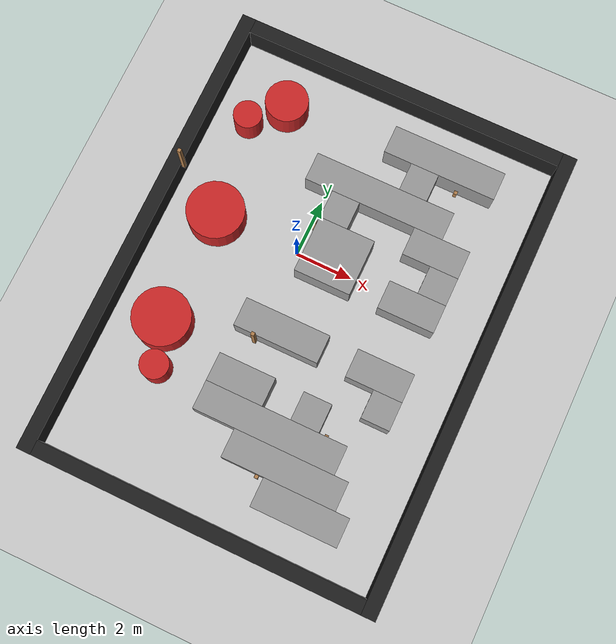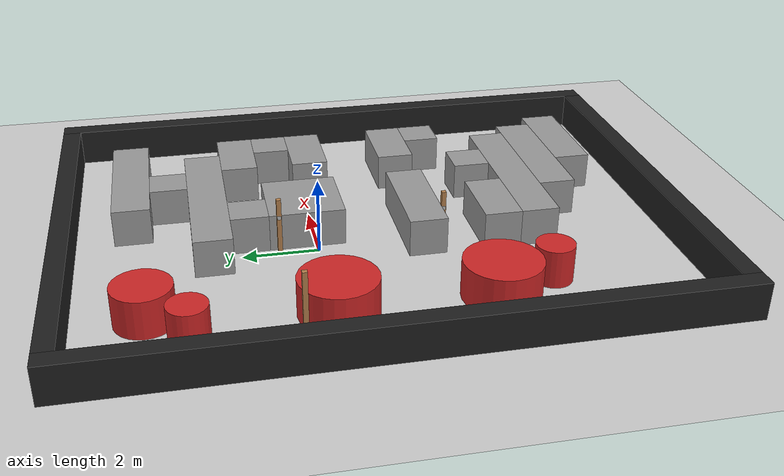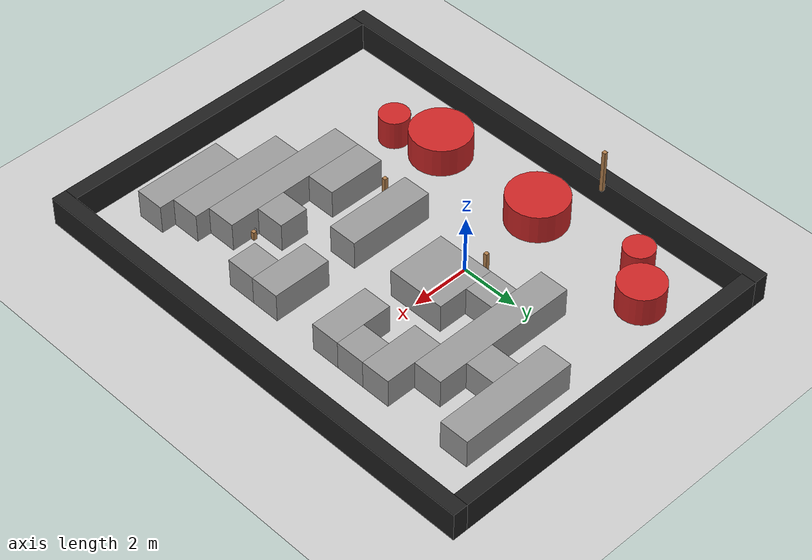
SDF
<sdf version="1.7">
 <world name="default">
  <light name="sun" type="directional">
   <pose>0 0 10 0 -0 0</pose>
   <diffuse>0.8 0.8 0.8 1</diffuse>
   <specular>0.2 0.2 0.2 1</specular>
   <attenuation>
    <range>1000</range>
    <constant>0.9</constant>
    <linear>0.01</linear>
    <quadratic>0.001</quadratic>
   </attenuation>
   <direction>-0.5 0.1 -0.9</direction>
   <spot><inner_angle>0</inner_angle><outer_angle>0</outer_angle><falloff>0</falloff></spot>
  </light>
  <model name="ground_plane">
   <static>1</static>
   <link name="link">
    <collision name="collision">
     <geometry><plane><normal>0 0 1</normal><size>100 100</size></plane></geometry>
     <surface><friction><ode><mu>100</mu><mu2>50</mu2></ode></friction></surface>
    </collision>
    <visual name="visual">
     <cast_shadows>0</cast_shadows>
     <geometry><plane><normal>0 0 1</normal><size>100 100</size></plane></geometry>
     <material>
      <script><uri>file://media/materials/scripts/gazebo.material</uri><name>Gazebo/Grey</name></script>
     </material>
    </visual>
   </link>
  </model>
  <gravity>0 0 -9.8</gravity>
  <magnetic_field>6e-06 2.3e-05 -4.2e-05</magnetic_field>
  <atmosphere type="adiabatic"/>
  <physics type="ode">
   <max_step_size>0.001</max_step_size>
   <real_time_factor>1</real_time_factor>
   <real_time_update_rate>1000</real_time_update_rate>
  </physics>
  <scene><ambient>0.4 0.4 0.4 1</ambient><background>0.7 0.7 0.7 1</background><shadows>1</shadows></scene>
  <audio><device>default</device></audio>
  <spherical_coordinates>
   <surface_model>EARTH_WGS84</surface_model>
   <latitude_deg>0</latitude_deg>
   <longitude_deg>0</longitude_deg>
   <elevation>0</elevation>
   <heading_deg>0</heading_deg>
  </spherical_coordinates>
  <model name="north_wall">
   <static>1</static>
   <pose>7 -1.5 0.5 0 0 0</pose>
   <link name="link">
    <inertial>
     <mass>1</mass>
     <inertia>
      <ixx>0.166667</ixx>
      <ixy>0</ixy>
      <ixz>0</ixz>
      <iyy>0.166667</iyy>
      <iyz>0</iyz>
      <izz>0.166667</izz>
     </inertia>
    </inertial>
    <collision name="collision"><geometry><box><size>0.5 16.5 1</size></box></geometry></collision>
    <visual name="visual">
     <geometry><box><size>0.5 16.5 1</size></box></geometry>
     <material>
      <script><name>Gazebo/Black</name><uri>file://media/materials/scripts/gazebo.material</uri></script>
     </material>
    </visual>
   </link>
  </model>
  <model name="south_wall">
   <static>1</static>
   <pose>-5 -1.5 0.5 0 0 0</pose>
   <link name="link">
    <inertial>
     <mass>1</mass>
     <inertia>
      <ixx>0.166667</ixx>
      <ixy>0</ixy>
      <ixz>0</ixz>
      <iyy>0.166667</iyy>
      <iyz>0</iyz>
      <izz>0.166667</izz>
     </inertia>
    </inertial>
    <collision name="collision"><geometry><box><size>0.5 16.5 1</size></box></geometry></collision>
    <visual name="visual">
     <geometry><box><size>0.5 16.5 1</size></box></geometry>
     <material>
      <script><name>Gazebo/Black</name><uri>file://media/materials/scripts/gazebo.material</uri></script>
     </material>
    </visual>
   </link>
  </model>
  <model name="east_wall">
   <static>1</static>
   <pose>1 -9.5 0.5 0 0 0</pose>
   <link name="link">
    <inertial>
     <mass>1</mass>
     <inertia>
      <ixx>0.166667</ixx>
      <ixy>0</ixy>
      <ixz>0</ixz>
      <iyy>0.166667</iyy>
      <iyz>0</iyz>
      <izz>0.166667</izz>
     </inertia>
    </inertial>
    <collision name="collision"><geometry><box><size>11.5 0.5 1</size></box></geometry></collision>
    <visual name="visual">
     <geometry><box><size>11.5 0.5 1</size></box></geometry>
     <material>
      <script><name>Gazebo/Black</name><uri>file://media/materials/scripts/gazebo.material</uri></script>
     </material>
    </visual>
   </link>
  </model>
  <model name="west_wall">
   <static>1</static>
   <pose>1 6.5 0.5 0 -0 0</pose>
   <link name="link">
    <inertial>
     <mass>1</mass>
     <inertia>
      <ixx>0.166667</ixx>
      <ixy>0</ixy>
      <ixz>0</ixz>
      <iyy>0.166667</iyy>
      <iyz>0</iyz>
      <izz>0.166667</izz>
     </inertia>
    </inertial>
    <collision name="collision"><geometry><box><size>11.5 0.5 1</size></box></geometry></collision>
    <visual name="visual">
     <geometry><box><size>11.5 0.5 1</size></box></geometry>
     <material>
      <script><name>Gazebo/Black</name><uri>file://media/materials/scripts/gazebo.material</uri></script>
     </material>
    </visual>
   </link>
  </model>
  <model name="b1">
   <static>1</static>
   <pose>3.25 4.75 0.5 0 0 0</pose>
   <link name="link">
    <inertial>
     <mass>1</mass>
     <inertia>
      <ixx>0.166667</ixx>
      <ixy>0</ixy>
      <ixz>0</ixz>
      <iyy>0.166667</iyy>
      <iyz>0</iyz>
      <izz>0.166667</izz>
     </inertia>
    </inertial>
    <collision name="collision"><geometry><box><size>4 1 1</size></box></geometry></collision>
    <visual name="visual">
     <geometry><box><size>4 1 1</size></box></geometry>
     <material>
      <script><name>Gazebo/Grey</name><uri>file://media/materials/scripts/gazebo.material</uri></script>
     </material>
    </visual>
   </link>
  </model>
  <model name="b2">
   <static>1</static>
   <pose>2.75 3.75 0.5 0 0 0</pose>
   <link name="link">
    <inertial>
     <mass>1</mass>
     <inertia>
      <ixx>0.166667</ixx>
      <ixy>0</ixy>
      <ixz>0</ixz>
      <iyy>0.166667</iyy>
      <iyz>0</iyz>
      <izz>0.166667</izz>
     </inertia>
    </inertial>
    <collision name="collision"><geometry><box><size>1 1 1</size></box></geometry></collision>
    <visual name="visual">
     <geometry><box><size>1 1 1</size></box></geometry>
     <material>
      <script><name>Gazebo/Grey</name><uri>file://media/materials/scripts/gazebo.material</uri></script>
     </material>
    </visual>
   </link>
  </model>
  <model name="b3">
   <static>1</static>
   <pose>1.75 2.75 0.5 0 0 0</pose>
   <link name="link">
    <inertial>
     <mass>1</mass>
     <inertia>
      <ixx>0.166667</ixx>
      <ixy>0</ixy>
      <ixz>0</ixz>
      <iyy>0.166667</iyy>
      <iyz>0</iyz>
      <izz>0.166667</izz>
     </inertia>
    </inertial>
    <collision name="collision"><geometry><box><size>5 1 1</size></box></geometry></collision>
    <visual name="visual">
     <geometry><box><size>5 1 1</size></box></geometry>
     <material>
      <script><name>Gazebo/Grey</name><uri>file://media/materials/scripts/gazebo.material</uri></script>
     </material>
    </visual>
   </link>
  </model>
  <model name="b4">
   <static>1</static>
   <pose>4.25 1.75 0.5 0 0 0</pose>
   <link name="link">
    <inertial>
     <mass>1</mass>
     <inertia>
      <ixx>0.166667</ixx>
      <ixy>0</ixy>
      <ixz>0</ixz>
      <iyy>0.166667</iyy>
      <iyz>0</iyz>
      <izz>0.166667</izz>
     </inertia>
    </inertial>
    <collision name="collision"><geometry><box><size>2 1 1</size></box></geometry></collision>
    <visual name="visual">
     <geometry><box><size>2 1 1</size></box></geometry>
     <material>
      <script><name>Gazebo/Grey</name><uri>file://media/materials/scripts/gazebo.material</uri></script>
     </material>
    </visual>
   </link>
  </model>
  <model name="b5">
   <static>1</static>
   <pose>4.75 0.75 0.5 0 0 0</pose>
   <link name="link">
    <inertial>
     <mass>1</mass>
     <inertia>
      <ixx>0.166667</ixx>
      <ixy>0</ixy>
      <ixz>0</ixz>
      <iyy>0.166667</iyy>
      <iyz>0</iyz>
      <izz>0.166667</izz>
     </inertia>
    </inertial>
    <collision name="collision"><geometry><box><size>1 1 1</size></box></geometry></collision>
    <visual name="visual">
     <geometry><box><size>1 1 1</size></box></geometry>
     <material>
      <script><name>Gazebo/Grey</name><uri>file://media/materials/scripts/gazebo.material</uri></script>
     </material>
    </visual>
   </link>
  </model>
  <model name="b6">
   <static>1</static>
   <pose>4.25 -0.25 0.5 0 0 0</pose>
   <link name="link">
    <inertial>
     <mass>1</mass>
     <inertia>
      <ixx>0.166667</ixx>
      <ixy>0</ixy>
      <ixz>0</ixz>
      <iyy>0.166667</iyy>
      <iyz>0</iyz>
      <izz>0.166667</izz>
     </inertia>
    </inertial>
    <collision name="collision"><geometry><box><size>2 1 1</size></box></geometry></collision>
    <visual name="visual">
     <geometry><box><size>2 1 1</size></box></geometry>
     <material>
      <script><name>Gazebo/Grey</name><uri>file://media/materials/scripts/gazebo.material</uri></script>
     </material>
    </visual>
   </link>
  </model>
  <model name="b7">
   <static>1</static>
   <pose>0.75 1.75 0.5 0 0 0</pose>
   <link name="link">
    <inertial>
     <mass>1</mass>
     <inertia>
      <ixx>0.166667</ixx>
      <ixy>0</ixy>
      <ixz>0</ixz>
      <iyy>0.166667</iyy>
      <iyz>0</iyz>
      <izz>0.166667</izz>
     </inertia>
    </inertial>
    <collision name="collision"><geometry><box><size>1 1 1</size></box></geometry></collision>
    <visual name="visual">
     <geometry><box><size>1 1 1</size></box></geometry>
     <material>
      <script><name>Gazebo/Grey</name><uri>file://media/materials/scripts/gazebo.material</uri></script>
     </material>
    </visual>
   </link>
  </model>
  <model name="b8">
   <static>1</static>
   <pose>1.25 0.25 0.5 0 0 0</pose>
   <link name="link">
    <inertial>
     <mass>1</mass>
     <inertia>
      <ixx>0.166667</ixx>
      <ixy>0</ixy>
      <ixz>0</ixz>
      <iyy>0.166667</iyy>
      <iyz>0</iyz>
      <izz>0.166667</izz>
     </inertia>
    </inertial>
    <collision name="collision"><geometry><box><size>2 2 1</size></box></geometry></collision>
    <visual name="visual">
     <geometry><box><size>2 2 1</size></box></geometry>
     <material>
      <script><name>Gazebo/Grey</name><uri>file://media/materials/scripts/gazebo.material</uri></script>
     </material>
    </visual>
   </link>
  </model>
  <model name="b9">
   <static>1</static>
   <pose>4.25 -2.75 0.5 0 0 0</pose>
   <link name="link">
    <inertial>
     <mass>1</mass>
     <inertia>
      <ixx>0.166667</ixx>
      <ixy>0</ixy>
      <ixz>0</ixz>
      <iyy>0.166667</iyy>
      <iyz>0</iyz>
      <izz>0.166667</izz>
     </inertia>
    </inertial>
    <collision name="collision"><geometry><box><size>2 1 1</size></box></geometry></collision>
    <visual name="visual">
     <geometry><box><size>2 1 1</size></box></geometry>
     <material>
      <script><name>Gazebo/Grey</name><uri>file://media/materials/scripts/gazebo.material</uri></script>
     </material>
    </visual>
   </link>
  </model>
  <model name="b10">
   <static>1</static>
   <pose>4.75 -3.75 0.5 0 0 0</pose>
   <link name="link">
    <inertial>
     <mass>1</mass>
     <inertia>
      <ixx>0.166667</ixx>
      <ixy>0</ixy>
      <ixz>0</ixz>
      <iyy>0.166667</iyy>
      <iyz>0</iyz>
      <izz>0.166667</izz>
     </inertia>
    </inertial>
    <collision name="collision"><geometry><box><size>1 1 1</size></box></geometry></collision>
    <visual name="visual">
     <geometry><box><size>1 1 1</size></box></geometry>
     <material>
      <script><name>Gazebo/Grey</name><uri>file://media/materials/scripts/gazebo.material</uri></script>
     </material>
    </visual>
   </link>
  </model>
  <model name="b11">
   <static>1</static>
   <pose>0.75 -2.75 0.5 0 0 0</pose>
   <link name="link">
    <inertial>
     <mass>1</mass>
     <inertia>
      <ixx>0.166667</ixx>
      <ixy>0</ixy>
      <ixz>0</ixz>
      <iyy>0.166667</iyy>
      <iyz>0</iyz>
      <izz>0.166667</izz>
     </inertia>
    </inertial>
    <collision name="collision"><geometry><box><size>3 1 1</size></box></geometry></collision>
    <visual name="visual">
     <geometry><box><size>3 1 1</size></box></geometry>
     <material>
      <script><name>Gazebo/Grey</name><uri>file://media/materials/scripts/gazebo.material</uri></script>
     </material>
    </visual>
   </link>
  </model>
  <model name="b12">
   <static>1</static>
   <pose>2.75 -4.75 0.5 0 0 0</pose>
   <link name="link">
    <inertial>
     <mass>1</mass>
     <inertia>
      <ixx>0.166667</ixx>
      <ixy>0</ixy>
      <ixz>0</ixz>
      <iyy>0.166667</iyy>
      <iyz>0</iyz>
      <izz>0.166667</izz>
     </inertia>
    </inertial>
    <collision name="collision"><geometry><box><size>1 1 1</size></box></geometry></collision>
    <visual name="visual">
     <geometry><box><size>1 1 1</size></box></geometry>
     <material>
      <script><name>Gazebo/Grey</name><uri>file://media/materials/scripts/gazebo.material</uri></script>
     </material>
    </visual>
   </link>
  </model>
  <model name="b13">
   <static>1</static>
   <pose>0.25 -4.75 0.5 0 0 0</pose>
   <link name="link">
    <inertial>
     <mass>1</mass>
     <inertia>
      <ixx>0.166667</ixx>
      <ixy>0</ixy>
      <ixz>0</ixz>
      <iyy>0.166667</iyy>
      <iyz>0</iyz>
      <izz>0.166667</izz>
     </inertia>
    </inertial>
    <collision name="collision"><geometry><box><size>2 1 1</size></box></geometry></collision>
    <visual name="visual">
     <geometry><box><size>2 1 1</size></box></geometry>
     <material>
      <script><name>Gazebo/Grey</name><uri>file://media/materials/scripts/gazebo.material</uri></script>
     </material>
    </visual>
   </link>
  </model>
  <model name="b14">
   <static>1</static>
   <pose>1.75 -5.75 0.5 0 0 0</pose>
   <link name="link">
    <inertial>
     <mass>1</mass>
     <inertia>
      <ixx>0.166667</ixx>
      <ixy>0</ixy>
      <ixz>0</ixz>
      <iyy>0.166667</iyy>
      <iyz>0</iyz>
      <izz>0.166667</izz>
     </inertia>
    </inertial>
    <collision name="collision"><geometry><box><size>5 1 1</size></box></geometry></collision>
    <visual name="visual">
     <geometry><box><size>5 1 1</size></box></geometry>
     <material>
      <script><name>Gazebo/Grey</name><uri>file://media/materials/scripts/gazebo.material</uri></script>
     </material>
    </visual>
   </link>
  </model>
  <model name="b15">
   <static>1</static>
   <pose>2.75 -6.75 0.5 0 0 0</pose>
   <link name="link">
    <inertial>
     <mass>1</mass>
     <inertia>
      <ixx>0.166667</ixx>
      <ixy>0</ixy>
      <ixz>0</ixz>
      <iyy>0.166667</iyy>
      <iyz>0</iyz>
      <izz>0.166667</izz>
     </inertia>
    </inertial>
    <collision name="collision"><geometry><box><size>4 1 1</size></box></geometry></collision>
    <visual name="visual">
     <geometry><box><size>4 1 1</size></box></geometry>
     <material>
      <script><name>Gazebo/Grey</name><uri>file://media/materials/scripts/gazebo.material</uri></script>
     </material>
    </visual>
   </link>
  </model>
  <model name="b16">
   <static>1</static>
   <pose>3.75 -7.75 0.5 0 0 0</pose>
   <link name="link">
    <inertial>
     <mass>1</mass>
     <inertia>
      <ixx>0.166667</ixx>
      <ixy>0</ixy>
      <ixz>0</ixz>
      <iyy>0.166667</iyy>
      <iyz>0</iyz>
      <izz>0.166667</izz>
     </inertia>
    </inertial>
    <collision name="collision"><geometry><box><size>3 1 1</size></box></geometry></collision>
    <visual name="visual">
     <geometry><box><size>3 1 1</size></box></geometry>
     <material>
      <script><name>Gazebo/Grey</name><uri>file://media/materials/scripts/gazebo.material</uri></script>
     </material>
    </visual>
   </link>
  </model>
  <model name="c1">
   <pose>-2.5 4.5 0.5 0 0 0</pose>
   <link name="link">
    <inertial>
     <mass>1</mass>
     <inertia><ixx>0.145833</ixx><ixy>0</ixy><ixz>0</ixz><iyy>0.145833</iyy><iyz>0</iyz><izz>0.125</izz></inertia>
    </inertial>
    <collision name="collision">
     <geometry><cylinder><radius>0.75</radius><length>1</length></cylinder></geometry>
    </collision>
    <visual name="visual">
     <geometry><cylinder><radius>0.75</radius><length>1</length></cylinder></geometry>
     <material>
      <script><name>Gazebo/Red</name><uri>file://media/materials/scripts/gazebo.material</uri></script>
     </material>
    </visual>
   </link>
  </model>
  <model name="c2">
   <pose>-3.5 3.5 0.5 0 0 0</pose>
   <link name="link">
    <inertial>
     <mass>1</mass>
     <inertia><ixx>0.145833</ixx><ixy>0</ixy><ixz>0</ixz><iyy>0.145833</iyy><iyz>0</iyz><izz>0.125</izz></inertia>
    </inertial>
    <collision name="collision">
     <geometry><cylinder><radius>0.5</radius><length>1</length></cylinder></geometry>
    </collision>
    <visual name="visual">
     <geometry><cylinder><radius>0.5</radius><length>1</length></cylinder></geometry>
     <material>
      <script><name>Gazebo/Red</name><uri>file://media/materials/scripts/gazebo.material</uri></script>
     </material>
    </visual>
   </link>
  </model>
  <model name="c3">
   <pose>-3 0 0.5 0 0 0</pose>
   <link name="link">
    <inertial>
     <mass>1</mass>
     <inertia><ixx>0.145833</ixx><ixy>0</ixy><ixz>0</ixz><iyy>0.145833</iyy><iyz>0</iyz><izz>0.125</izz></inertia>
    </inertial>
    <collision name="collision">
     <geometry><cylinder><radius>1</radius><length>1</length></cylinder></geometry>
    </collision>
    <visual name="visual">
     <geometry><cylinder><radius>1</radius><length>1</length></cylinder></geometry>
     <material>
      <script><name>Gazebo/Red</name><uri>file://media/materials/scripts/gazebo.material</uri></script>
     </material>
    </visual>
   </link>
  </model>
  <model name="c4">
   <pose>-2.5 -5.5 0.5 0 0 0</pose>
   <link name="link">
    <inertial>
     <mass>1</mass>
     <inertia><ixx>0.145833</ixx><ixy>0</ixy><ixz>0</ixz><iyy>0.145833</iyy><iyz>0</iyz><izz>0.125</izz></inertia>
    </inertial>
    <collision name="collision">
     <geometry><cylinder><radius>0.5</radius><length>1</length></cylinder></geometry>
    </collision>
    <visual name="visual">
     <geometry><cylinder><radius>0.5</radius><length>1</length></cylinder></geometry>
     <material>
      <script><name>Gazebo/Red</name><uri>file://media/materials/scripts/gazebo.material</uri></script>
     </material>
    </visual>
   </link>
  </model>
  <model name="c5">
   <pose>-3 -4 0.5 0 0 0</pose>
   <link name="link">
    <inertial>
     <mass>1</mass>
     <inertia><ixx>0.145833</ixx><ixy>0</ixy><ixz>0</ixz><iyy>0.145833</iyy><iyz>0</iyz><izz>0.125</izz></inertia>
    </inertial>
    <collision name="collision">
     <geometry><cylinder><radius>1</radius><length>1</length></cylinder></geometry>
    </collision>
    <visual name="visual">
     <geometry><cylinder><radius>1</radius><length>1</length></cylinder></geometry>
     <material>
      <script><name>Gazebo/Red</name><uri>file://media/materials/scripts/gazebo.material</uri></script>
     </material>
    </visual>
   </link>
  </model>
  <model name="aruco_column_6x6_100mm_42">
   <static>1</static>
   <link name="link">
    <inertial>
     <mass>1</mass>
     <inertia><ixx>1</ixx><ixy>0</ixy><ixz>0</ixz><iyy>1</iyy><iyz>0</iyz><izz>1</izz></inertia>
    </inertial>
    <collision name="collision"><geometry><box><size>0.12 0.12 0.3</size></box></geometry></collision>
    <visual name="visual">
     <geometry><box><size>0.12 0.12 0.3</size></box></geometry>
     <material>
      <script><uri>file://media/materials/scripts/gazebo.material</uri><name>Gazebo/Wood</name></script>
     </material>
    </visual>
   </link>
   <link name="aruco_6x6_100mm_42::main">
    <pose relative_to="aruco_6x6_100mm_42::__model__">0 0 0 0 -0 0</pose>
    <visual name="main_Visual">
     <geometry><box><size>0.1 0.1 0.001</size></box></geometry>
     <material>
      <script>
       <uri>file://media/materials/scripts</uri>
       <uri>file://media/materials/textures</uri>
       <name>aruco_6x6_100mm_42</name>
      </script>
     </material>
    </visual>
    <inertial>
     <inertia><ixx>1</ixx><ixy>0</ixy><ixz>0</ixz><iyy>1</iyy><iyz>0</iyz><izz>1</izz></inertia>
     <mass>1</mass>
    </inertial>
   </link>
   <frame name="aruco_6x6_100mm_42::__model__" attached_to="aruco_6x6_100mm_42::main">
    <pose relative_to="__model__">-0.06 0 0.24 3.14159 1.57079 3.14159</pose>
   </frame>
   <joint name="aruco_6x6_100mm_42_joint" type="fixed">
    <child>aruco_6x6_100mm_42::main</child>
    <parent>link</parent>
   </joint>
   <pose>4 4.19 0.15 0 0 0</pose>
  </model>
  <model name="aruco_column_6x6_100mm_2">
   <static>1</static>
   <link name="link">
    <pose>0 0 0.75 0 0 0</pose>
    <inertial>
     <mass>1</mass>
     <inertia><ixx>1</ixx><ixy>0</ixy><ixz>0</ixz><iyy>1</iyy><iyz>0</iyz><izz>1</izz></inertia>
    </inertial>
    <collision name="collision">
     <geometry><box><size>0.12 0.12 1.5</size></box></geometry>
     <surface>
      <contact>
       <poissons_ratio>0.347</poissons_ratio>
       <elastic_modulus>8.8e+09</elastic_modulus>
       <ode><kp>100000</kp><kd>1</kd><max_vel>1</max_vel><min_depth>0.001</min_depth></ode>
      </contact>
      <friction>
       <torsional>
        <coefficient>1</coefficient>
        <use_patch_radius>0</use_patch_radius>
        <surface_radius>0.05</surface_radius>
       </torsional>
      </friction>
     </surface>
    </collision>
    <visual name="visual">
     <geometry><box><size>0.12 0.12 1.5</size></box></geometry>
     <material>
      <script><uri>file://media/materials/scripts/gazebo.material</uri><name>Gazebo/Wood</name></script>
     </material>
    </visual>
   </link>
   <link name="aruco_6x6_100mm_2::main">
    <pose relative_to="aruco_6x6_100mm_2::__model__">0 0 0 0 -0 0</pose>
    <visual name="main_Visual">
     <geometry><box><size>0.1 0.1 0.001</size></box></geometry>
     <material>
      <script>
       <uri>file://media/materials/scripts</uri>
       <uri>file://media/materials/textures</uri>
       <name>aruco_6x6_100mm_2</name>
      </script>
     </material>
    </visual>
    <inertial>
     <inertia><ixx>1</ixx><ixy>0</ixy><ixz>0</ixz><iyy>1</iyy><iyz>0</iyz><izz>1</izz></inertia>
     <mass>1</mass>
    </inertial>
   </link>
   <frame name="aruco_6x6_100mm_2::__model__" attached_to="aruco_6x6_100mm_2::main">
    <pose relative_to="__model__">-0.06 0 0.14 3.14159 1.57079 3.14159</pose>
   </frame>
   <joint name="aruco_6x6_100mm_2_joint" type="fixed">
    <child>aruco_6x6_100mm_2::main</child>
    <parent>link</parent>
   </joint>
   <pose>-4.68 1 0.75 0 0 0</pose>
  </model>
  <model name="aruco_column_6x6_100mm_0">
   <static>1</static>
   <link name="link">
    <inertial>
     <mass>1</mass>
     <inertia><ixx>1</ixx><ixy>0</ixy><ixz>0</ixz><iyy>1</iyy><iyz>0</iyz><izz>1</izz></inertia>
    </inertial>
    <collision name="collision">
     <geometry><box><size>0.12 0.12 0.3</size></box></geometry>
     <surface>
      <contact>
       <poissons_ratio>0.347</poissons_ratio>
       <elastic_modulus>8.8e+09</elastic_modulus>
       <ode><kp>100000</kp><kd>1</kd><max_vel>1</max_vel><min_depth>0.001</min_depth></ode>
      </contact>
      <friction>
       <torsional>
        <coefficient>1</coefficient>
        <use_patch_radius>0</use_patch_radius>
        <surface_radius>0.05</surface_radius>
       </torsional>
      </friction>
     </surface>
    </collision>
    <visual name="visual">
     <geometry><box><size>0.12 0.12 0.3</size></box></geometry>
     <material>
      <script><uri>file://media/materials/scripts/gazebo.material</uri><name>Gazebo/Wood</name></script>
     </material>
    </visual>
   </link>
   <link name="aruco_6x6_100mm_0::main">
    <pose relative_to="aruco_6x6_100mm_0::__model__">0 0 0 0 0 0</pose>
    <visual name="main_Visual">
     <geometry><box><size>0.1 0.1 0.001</size></box></geometry>
     <material>
      <script>
       <uri>file://media/materials/scripts</uri>
       <uri>file://media/materials/textures</uri>
       <name>aruco_6x6_100mm_0</name>
      </script>
     </material>
    </visual>
    <inertial>
     <inertia><ixx>1</ixx><ixy>0</ixy><ixz>0</ixz><iyy>1</iyy><iyz>0</iyz><izz>1</izz></inertia>
     <mass>1</mass>
    </inertial>
   </link>
   <frame name="aruco_6x6_100mm_0::__model__" attached_to="aruco_6x6_100mm_0::main">
    <pose relative_to="__model__">-0.06 0 0.19 3.14159 1.57079 3.14159</pose>
   </frame>
   <joint name="aruco_6x6_100mm_0_joint" type="fixed">
    <child>aruco_6x6_100mm_0::main</child>
    <parent>link</parent>
   </joint>
   <pose>3.5 -5.19 0.15 0 0 0</pose>
  </model>
  <model name="aruco_column_6x6_100mm_51">
   <static>1</static>
   <link name="link">
    <inertial>
     <mass>1</mass>
     <inertia><ixx>1</ixx><ixy>0</ixy><ixz>0</ixz><iyy>1</iyy><iyz>0</iyz><izz>1</izz></inertia>
    </inertial>
    <collision name="collision"><geometry><box><size>0.12 0.12 1.5</size></box></geometry></collision>
    <visual name="visual">
     <geometry><box><size>0.12 0.12 1.5</size></box></geometry>
     <material>
      <script><uri>file://media/materials/scripts/gazebo.material</uri><name>Gazebo/Wood</name></script>
     </material>
    </visual>
   </link>
   <link name="aruco_6x6_100mm_51::main">
    <pose relative_to="aruco_6x6_100mm_51::__model__">0 0 0 0 -0 0</pose>
    <visual name="main_Visual">
     <geometry><box><size>0.1 0.1 0.001</size></box></geometry>
     <material>
      <script>
       <uri>file://media/materials/scripts</uri>
       <uri>file://media/materials/textures</uri>
       <name>aruco_6x6_100mm_51</name>
      </script>
     </material>
    </visual>
    <inertial>
     <inertia><ixx>1</ixx><ixy>0</ixy><ixz>0</ixz><iyy>1</iyy><iyz>0</iyz><izz>1</izz></inertia>
     <mass>1</mass>
    </inertial>
   </link>
   <frame name="aruco_6x6_100mm_51::__model__" attached_to="aruco_6x6_100mm_51::main">
    <pose relative_to="__model__">-0.06 0 0.24 3.14159 1.57079 3.14159</pose>
   </frame>
   <joint name="aruco_6x6_100mm_51_joint" type="fixed">
    <child>aruco_6x6_100mm_51::main</child>
    <parent>link</parent>
   </joint>
   <pose>0.19 1 0.75 0 0 0</pose>
  </model>
  <model name="aruco_column_6x6_100mm_59">
   <static>1</static>
   <link name="link">
    <inertial>
     <mass>1</mass>
     <inertia><ixx>1</ixx><ixy>0</ixy><ixz>0</ixz><iyy>1</iyy><iyz>0</iyz><izz>1</izz></inertia>
    </inertial>
    <collision name="collision"><geometry><box><size>0.12 0.12 1.4</size></box></geometry></collision>
    <visual name="visual">
     <geometry><box><size>0.12 0.12 1.4</size></box></geometry>
     <material>
      <script><uri>file://media/materials/scripts/gazebo.material</uri><name>Gazebo/Wood</name></script>
     </material>
    </visual>
   </link>
   <link name="aruco_6x6_100mm_59::main">
    <pose relative_to="aruco_6x6_100mm_59::__model__">0 0 0 0 -0 0</pose>
    <visual name="main_Visual">
     <geometry><box><size>0.1 0.1 0.001</size></box></geometry>
     <material>
      <script>
       <uri>file://media/materials/scripts</uri>
       <uri>file://media/materials/textures</uri>
       <name>aruco_6x6_100mm_59</name>
      </script>
     </material>
    </visual>
    <inertial>
     <inertia><ixx>1</ixx><ixy>0</ixy><ixz>0</ixz><iyy>1</iyy><iyz>0</iyz><izz>1</izz></inertia>
     <mass>1</mass>
    </inertial>
   </link>
   <frame name="aruco_6x6_100mm_59::__model__" attached_to="aruco_6x6_100mm_59::main">
    <pose relative_to="__model__">-0.06 0 0.24 3.14159 1.57079 3.14159</pose>
   </frame>
   <joint name="aruco_6x6_100mm_59_joint" type="fixed">
    <child>aruco_6x6_100mm_59::main</child>
    <parent>link</parent>
   </joint>
   <pose>0 -3.31 0.7 0 0 0</pose>
  </model>
  <model name="aruco_column_6x6_100mm_100">
   <static>1</static>
   <link name="link">
    <inertial>
     <mass>1</mass>
     <inertia><ixx>1</ixx><ixy>0</ixy><ixz>0</ixz><iyy>1</iyy><iyz>0</iyz><izz>1</izz></inertia>
    </inertial>
    <collision name="collision"><geometry><box><size>0.12 0.12 0.3</size></box></geometry></collision>
    <visual name="visual">
     <geometry><box><size>0.12 0.12 0.3</size></box></geometry>
     <material>
      <script><uri>file://media/materials/scripts/gazebo.material</uri><name>Gazebo/Wood</name></script>
     </material>
    </visual>
   </link>
   <link name="aruco_6x6_100mm_100::main">
    <pose relative_to="aruco_6x6_100mm_100::__model__">0 0 0 0 -0 0</pose>
    <visual name="main_Visual">
     <geometry><box><size>0.1 0.1 0.001</size></box></geometry>
     <material>
      <script>
       <uri>file://media/materials/scripts</uri>
       <uri>file://media/materials/textures</uri>
       <name>aruco_6x6_100mm_100</name>
      </script>
     </material>
    </visual>
    <inertial>
     <inertia><ixx>1</ixx><ixy>0</ixy><ixz>0</ixz><iyy>1</iyy><iyz>0</iyz><izz>1</izz></inertia>
     <mass>1</mass>
    </inertial>
   </link>
   <frame name="aruco_6x6_100mm_100::__model__" attached_to="aruco_6x6_100mm_100::main">
    <pose relative_to="__model__">-0.06 0 0.24 3.14159 1.57079 3.14159</pose>
   </frame>
   <joint name="aruco_6x6_100mm_100_joint" type="fixed">
    <child>aruco_6x6_100mm_100::main</child>
    <parent>link</parent>
   </joint>
   <pose>2 -7.31 0.15 0 0 0</pose>
  </model>
 </world>
</sdf>
